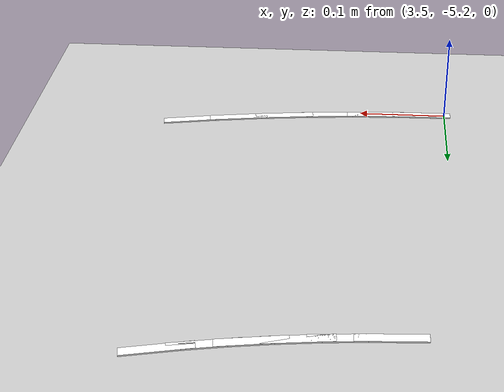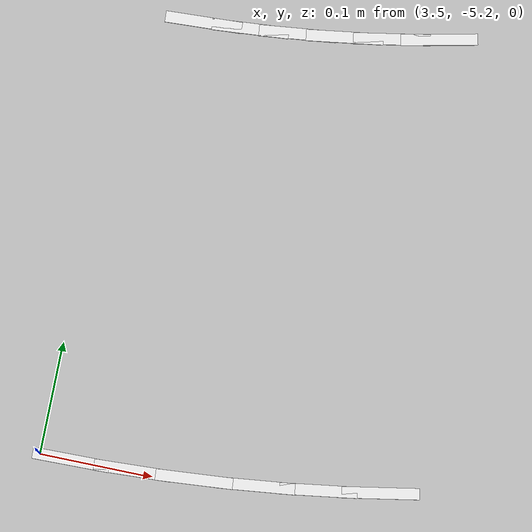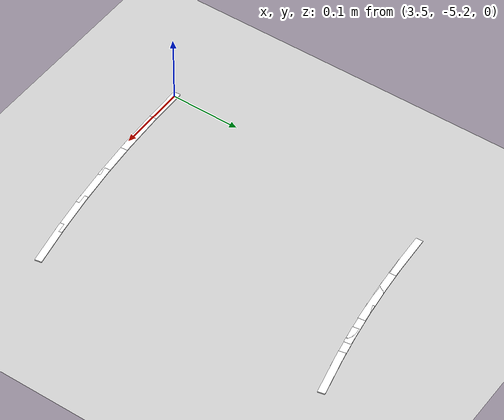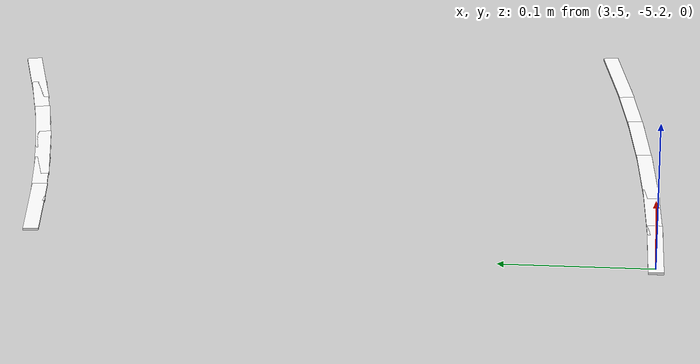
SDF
<sdf version="1.7">
 <world name="default">
  <model name="ground_plane">
   <static>1</static>
   <link name="link">
    <collision name="collision">
     <geometry><plane><normal>0 0 1</normal><size>100 100</size></plane></geometry>
     <surface>
      <contact><collide_bitmask>65535</collide_bitmask></contact>
      <friction><ode><mu>100</mu><mu2>50</mu2></ode></friction>
     </surface>
    </collision>
    <visual name="visual">
     <cast_shadows>0</cast_shadows>
     <geometry><plane><normal>0 0 1</normal><size>100 100</size></plane></geometry>
     <material>
      <script><uri>file://media/materials/scripts/gazebo.material</uri><name>Gazebo/Grey</name></script>
     </material>
    </visual>
   </link>
  </model>
  <model name="lane_line_right_50">
   <static>1</static>
   <link name="link">
    <pose>0 0 -0.004 0 -0 0</pose>
    <visual name="visual">
     <geometry><box><size>0.0681 0.01 0.01</size></box></geometry>
     <material><ambient>1 1 1 1</ambient><diffuse>1 1 1 1</diffuse></material>
    </visual>
    <collision name="collision"><geometry><box><size>0.0681 0.01 0.01</size></box></geometry></collision>
   </link>
   <pose>3.52724 -5.19959 0 0 -0 0.016029</pose>
  </model>
  <model name="lane_line_left_51">
   <static>1</static>
   <link name="link">
    <pose>0 0 -0.004 0 -0 0</pose>
    <visual name="visual">
     <geometry><box><size>0.0681 0.01 0.01</size></box></geometry>
     <material><ambient>1 1 1 1</ambient><diffuse>1 1 1 1</diffuse></material>
    </visual>
    <collision name="collision"><geometry><box><size>0.0681 0.01 0.01</size></box></geometry></collision>
   </link>
   <pose>3.56248 -4.7983 0 0 -0 0.048086</pose>
  </model>
  <model name="lane_line_right_51">
   <static>1</static>
   <link name="link">
    <pose>0 0 -0.004 0 -0 0</pose>
    <visual name="visual">
     <geometry><box><size>0.0681 0.01 0.01</size></box></geometry>
     <material><ambient>1 1 1 1</ambient><diffuse>1 1 1 1</diffuse></material>
    </visual>
    <collision name="collision"><geometry><box><size>0.0681 0.01 0.01</size></box></geometry></collision>
   </link>
   <pose>3.5817 -5.19784 0 0 -0 0.048086</pose>
  </model>
  <model name="lane_line_left_52">
   <static>1</static>
   <link name="link">
    <pose>0 0 -0.004 0 -0 0</pose>
    <visual name="visual">
     <geometry><box><size>0.0681 0.01 0.01</size></box></geometry>
     <material><ambient>1 1 1 1</ambient><diffuse>1 1 1 1</diffuse></material>
    </visual>
    <collision name="collision"><geometry><box><size>0.0681 0.01 0.01</size></box></geometry></collision>
   </link>
   <pose>3.60406 -4.79564 0 0 -0 0.080143</pose>
  </model>
  <model name="lane_line_right_52">
   <static>1</static>
   <link name="link">
    <pose>0 0 -0.004 0 -0 0</pose>
    <visual name="visual">
     <geometry><box><size>0.0681 0.01 0.01</size></box></geometry>
     <material><ambient>1 1 1 1</ambient><diffuse>1 1 1 1</diffuse></material>
    </visual>
    <collision name="collision"><geometry><box><size>0.0681 0.01 0.01</size></box></geometry></collision>
   </link>
   <pose>3.63608 -5.19435 0 0 -0 0.080143</pose>
  </model>
  <model name="lane_line_left_53">
   <static>1</static>
   <link name="link">
    <pose>0 0 -0.004 0 -0 0</pose>
    <visual name="visual">
     <geometry><box><size>0.0681 0.01 0.01</size></box></geometry>
     <material><ambient>1 1 1 1</ambient><diffuse>1 1 1 1</diffuse></material>
    </visual>
    <collision name="collision"><geometry><box><size>0.0681 0.01 0.01</size></box></geometry></collision>
   </link>
   <pose>3.64553 -4.79163 0 0 -0 0.1122</pose>
  </model>
  <model name="lane_line_right_53">
   <static>1</static>
   <link name="link">
    <pose>0 0 -0.004 0 -0 0</pose>
    <visual name="visual">
     <geometry><box><size>0.0681 0.01 0.01</size></box></geometry>
     <material><ambient>1 1 1 1</ambient><diffuse>1 1 1 1</diffuse></material>
    </visual>
    <collision name="collision"><geometry><box><size>0.0681 0.01 0.01</size></box></geometry></collision>
   </link>
   <pose>3.69032 -5.18912 0 0 -0 0.1122</pose>
  </model>
  <model name="lane_line_left_54">
   <static>1</static>
   <link name="link">
    <pose>0 0 -0.004 0 -0 0</pose>
    <visual name="visual">
     <geometry><box><size>0.0681 0.01 0.01</size></box></geometry>
     <material><ambient>1 1 1 1</ambient><diffuse>1 1 1 1</diffuse></material>
    </visual>
    <collision name="collision"><geometry><box><size>0.0681 0.01 0.01</size></box></geometry></collision>
   </link>
   <pose>3.68686 -4.78631 0 0 -0 0.144257</pose>
  </model>
  <model name="lane_line_right_54">
   <static>1</static>
   <link name="link">
    <pose>0 0 -0.004 0 -0 0</pose>
    <visual name="visual">
     <geometry><box><size>0.0681 0.01 0.01</size></box></geometry>
     <material><ambient>1 1 1 1</ambient><diffuse>1 1 1 1</diffuse></material>
    </visual>
    <collision name="collision"><geometry><box><size>0.0681 0.01 0.01</size></box></geometry></collision>
   </link>
   <pose>3.74436 -5.18215 0 0 -0 0.144257</pose>
  </model>
  <model name="lane_line_left_55">
   <static>1</static>
   <link name="link">
    <pose>0 0 -0.004 0 -0 0</pose>
    <visual name="visual">
     <geometry><box><size>0.0681 0.01 0.01</size></box></geometry>
     <material><ambient>1 1 1 1</ambient><diffuse>1 1 1 1</diffuse></material>
    </visual>
    <collision name="collision"><geometry><box><size>0.0681 0.01 0.01</size></box></geometry></collision>
   </link>
   <pose>3.72799 -4.77966 0 0 -0 0.176314</pose>
  </model>
  <model name="lane_line_right_55">
   <static>1</static>
   <link name="link">
    <pose>0 0 -0.004 0 -0 0</pose>
    <visual name="visual">
     <geometry><box><size>0.0681 0.01 0.01</size></box></geometry>
     <material><ambient>1 1 1 1</ambient><diffuse>1 1 1 1</diffuse></material>
    </visual>
    <collision name="collision"><geometry><box><size>0.0681 0.01 0.01</size></box></geometry></collision>
   </link>
   <pose>3.79815 -5.17346 0 0 -0 0.176314</pose>
  </model>
  <model name="lane_line_left_56">
   <static>1</static>
   <link name="link">
    <pose>0 0 -0.004 0 -0 0</pose>
    <visual name="visual">
     <geometry><box><size>0.0681 0.01 0.01</size></box></geometry>
     <material><ambient>1 1 1 1</ambient><diffuse>1 1 1 1</diffuse></material>
    </visual>
    <collision name="collision"><geometry><box><size>0.0681 0.01 0.01</size></box></geometry></collision>
   </link>
   <pose>3.76889 -4.77169 0 0 -0 0.208371</pose>
  </model>
 </world>
</sdf>
